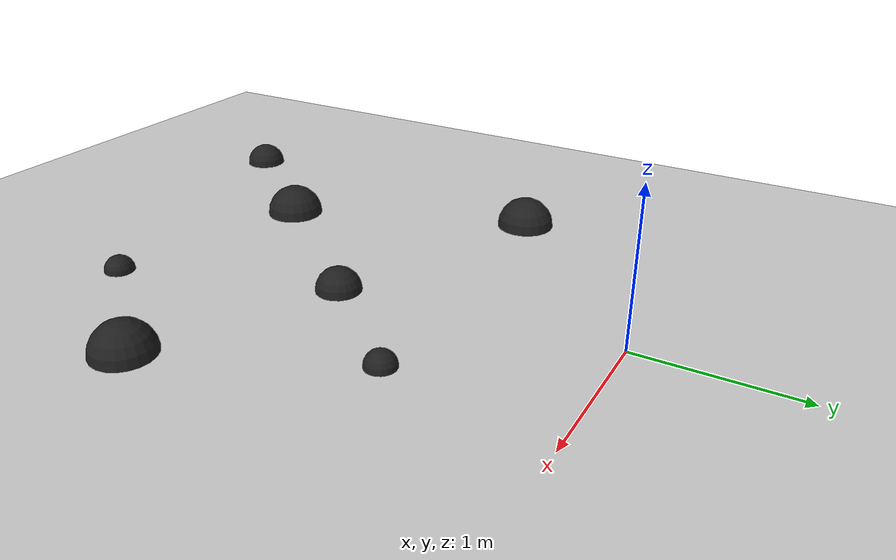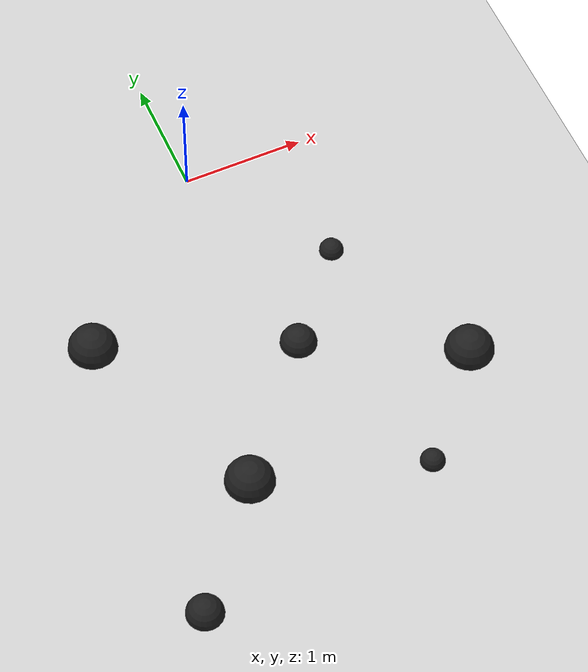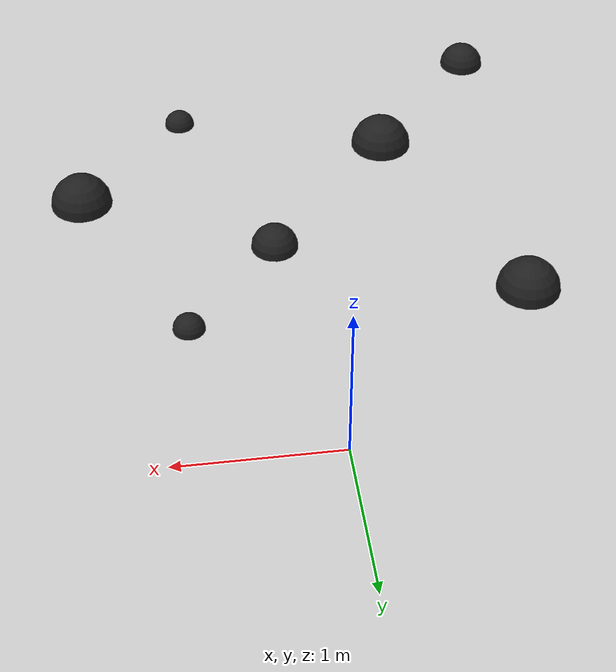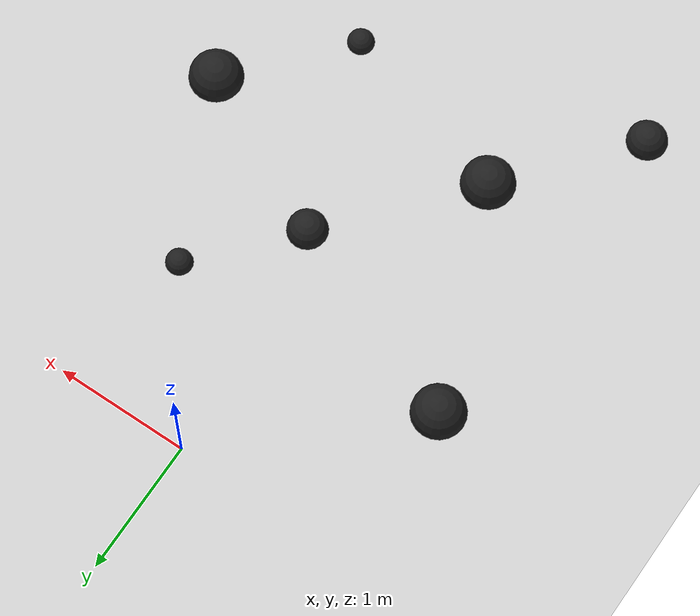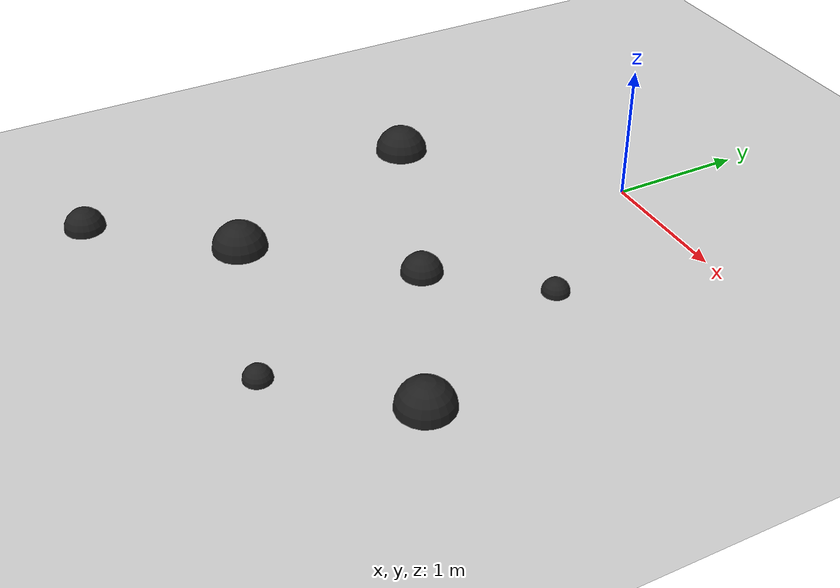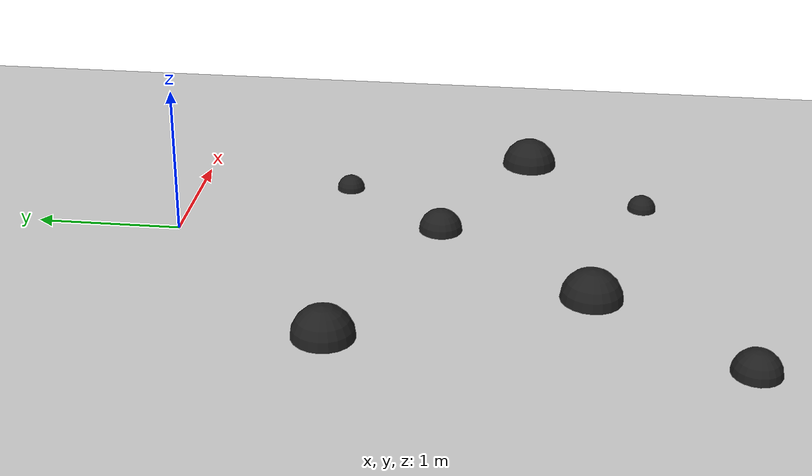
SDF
<?xml version="1.0" ?>
<sdf version="1.6">
  <world name='default'>

    <include>
      <uri>model://sun</uri>
    </include>

    <!-- A ground plane -->
    <include>
      <uri>model://ground_plane</uri>
    </include>

    <scene>
      <sky>
        <clouds>
          <speed>12</speed>
        </clouds>
      </sky>
    </scene>

    <include>
      <pose>1.4 -2.4 0 0 0 0 </pose>
      <name>ob1</name>
      <uri>model://obstacle1</uri>
    </include>

    <include>
      <pose>-1.3 -1.2 0 0 0 0 </pose>
      <name>ob1-1</name>
      <uri>model://obstacle1</uri>
    </include>

    <include>
      <pose>-0.65 -2.8 0 0 0 0 </pose>
      <name>ob1-2</name>
      <uri>model://obstacle1</uri>
    </include>

    <include>
      <pose>-1.4 -3.7 0 0 0 0 </pose>
      <name>ob2</name>
      <uri>model://obstacle2</uri>
    </include>

    <include>
      <pose>0.2 -1.8 0 0 0 0 </pose>
      <name>ob2-1</name>
      <uri>model://obstacle2</uri>
    </include>

    <include>
      <pose>0.8 -1.1 0 0 0 0 </pose>
      <name>ob3</name>
      <uri>model://obstacle3</uri>
    </include>

    <include>
      <pose>0.7 -3.2 0 0 0 0 </pose>
      <name>ob3-1</name>
      <uri>model://obstacle3</uri>
    </include>

  </world>
</sdf>

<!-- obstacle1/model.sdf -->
<sdf version="1.6">
  <model name="obstacle1">
    <link name="link">
      <pose>0 0 0 0 0 0</pose>
      <collision name="collision">
        <geometry>
          <sphere>
            <radius>0.2</radius>
          </sphere>
        </geometry>
        <surface>
          <friction>
            <ode>
              <mu>0</mu>
               <mu2>0</mu2>
              <slip1>1.0</slip1>
              <slip2>1.0</slip2>
            </ode>
          </friction>
        </surface>
      </collision>
      <visual name="visual">
        <cast_shadows>false</cast_shadows>
        <geometry>
            <sphere>
              <radius>0.2</radius>
            </sphere>
          </geometry>
        <material>
          <script>
            <uri>file://media/materials/scripts/gazebo.material</uri>
            <name>Gazebo/Black</name>
          </script>
        </material>
      </visual>
      <inertial>
        <mass>10</mass>
        <inertia>
          <ixx>10</ixx>
          <ixy>0</ixy>
          <ixz>0</ixz>
          <iyy>10</iyy>
          <iyz>0</iyz>
          <izz>10</izz>
        </inertia>
      </inertial>
    </link>
  </model>
</sdf>

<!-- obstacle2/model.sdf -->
<sdf version="1.6">
  <model name="obstacle2">
    <link name="link">
      <pose>0 0 0 0 0 0</pose>
      <collision name="collision">
        <geometry>
          <sphere>
            <radius>0.15</radius>
          </sphere>
        </geometry>
        <surface>
          <friction>
            <ode>
              <mu>0</mu>
               <mu2>0</mu2>
              <slip1>1.0</slip1>
              <slip2>1.0</slip2>
            </ode>
          </friction>
        </surface>
      </collision>
      <visual name="visual">
        <cast_shadows>false</cast_shadows>
        <geometry>
            <sphere>
              <radius>0.15</radius>
            </sphere>
          </geometry>
        <material>
          <script>
            <uri>file://media/materials/scripts/gazebo.material</uri>
            <name>Gazebo/Black</name>
          </script>
        </material>
      </visual>
      <inertial>
        <mass>10</mass>
        <inertia>
          <ixx>10</ixx>
          <ixy>0</ixy>
          <ixz>0</ixz>
          <iyy>10</iyy>
          <iyz>0</iyz>
          <izz>10</izz>
        </inertia>
      </inertial>
    </link>
  </model>
</sdf>

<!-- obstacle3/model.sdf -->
<sdf version="1.6">
  <model name="obstacle1">
    <link name="link">
      <pose>0 0 0 0 0 0</pose>
      <collision name="collision">
        <geometry>
          <sphere>
            <radius>0.1</radius>
          </sphere>
        </geometry>
        <surface>
          <friction>
            <ode>
              <mu>0</mu>
               <mu2>0</mu2>
              <slip1>1.0</slip1>
              <slip2>1.0</slip2>
            </ode>
          </friction>
        </surface>
      </collision>
      <visual name="visual">
        <cast_shadows>false</cast_shadows>
        <geometry>
            <sphere>
              <radius>0.1</radius>
            </sphere>
          </geometry>
        <material>
          <script>
            <uri>file://media/materials/scripts/gazebo.material</uri>
            <name>Gazebo/Black</name>
          </script>
        </material>
      </visual>
      <inertial>
        <mass>10</mass>
        <inertia>
          <ixx>10</ixx>
          <ixy>0</ixy>
          <ixz>0</ixz>
          <iyy>10</iyy>
          <iyz>0</iyz>
          <izz>10</izz>
        </inertia>
      </inertial>
    </link>
  </model>
</sdf>
